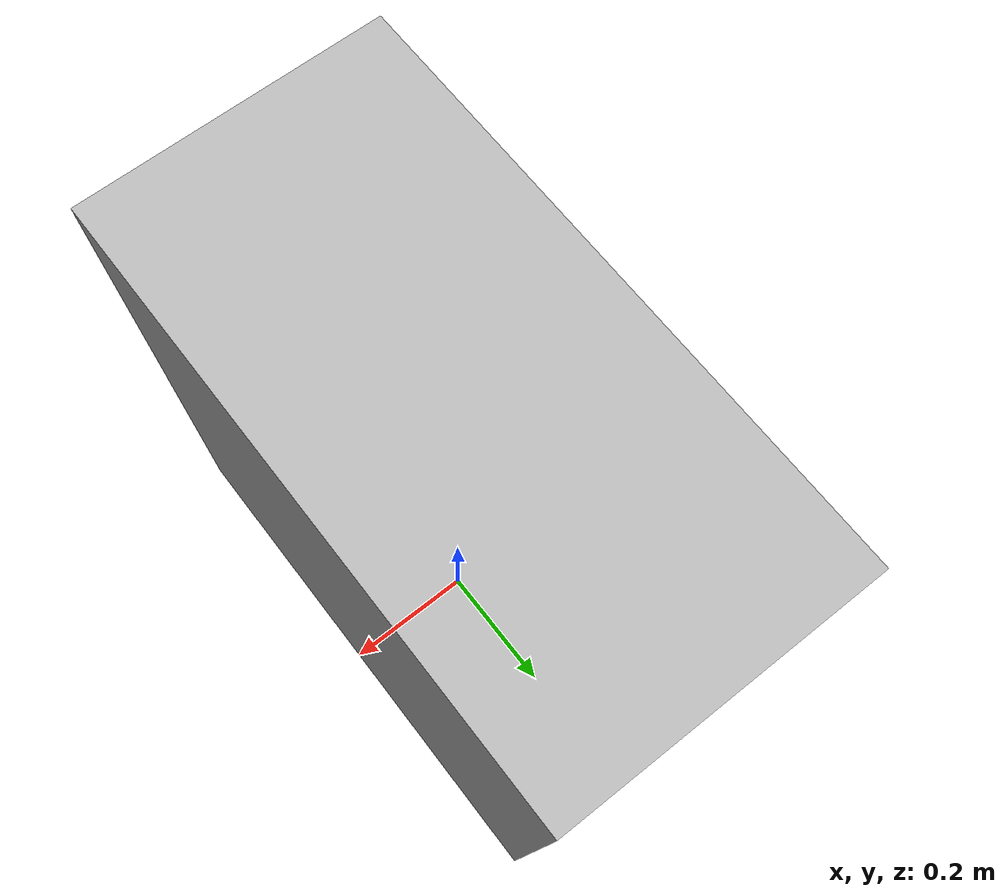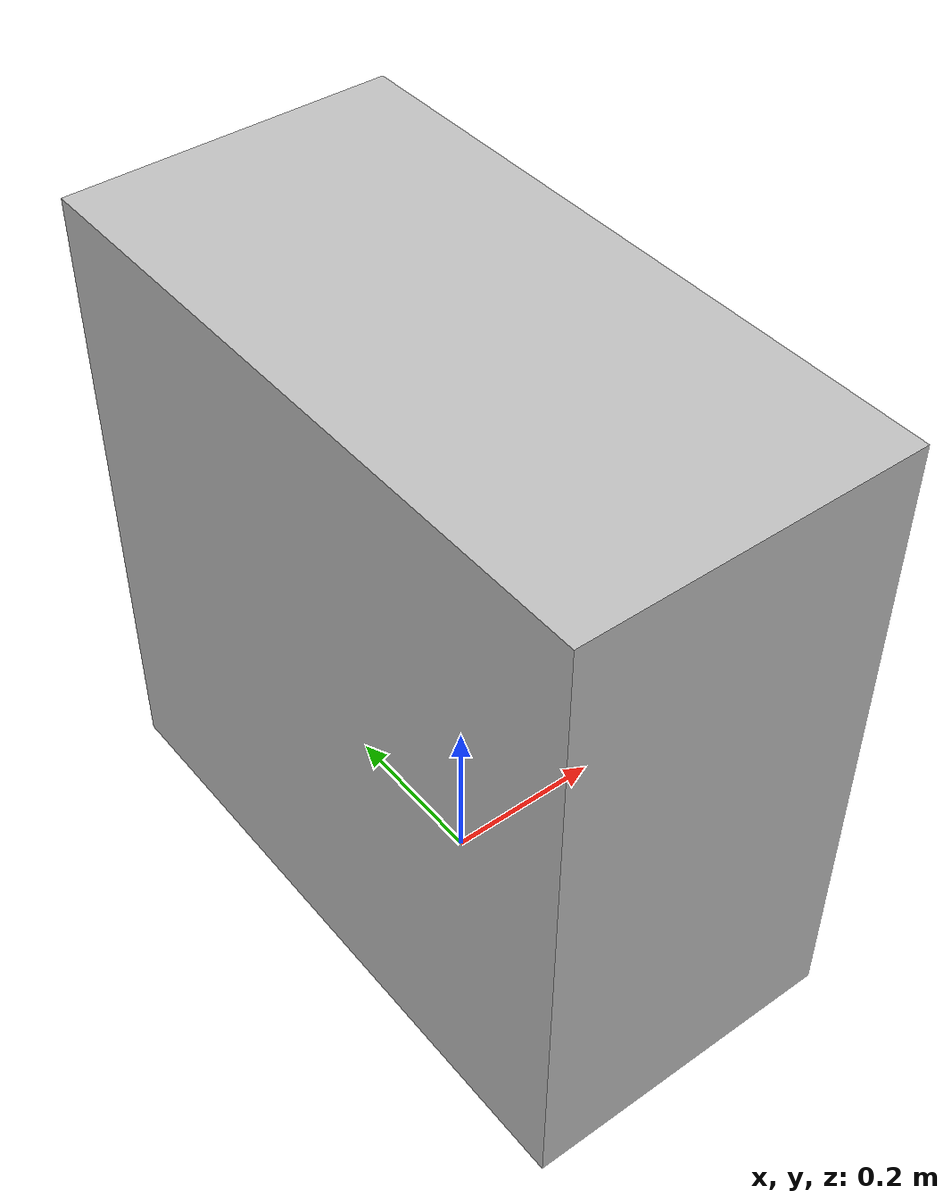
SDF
<?xml version="1.0"?>
<sdf version="1.6">
  <model name="rwc2016/cabinet_2doors">
    <link name="1_link">
      <collision name="1_col">
        <geometry>
          <box>
            <size>0.401 0.8 0.8</size>
          </box>
        </geometry>
      </collision>
      <visual name="1_vis">
        <geometry>
          <box>
            <size>0.401 0.8 0.8</size>
          </box>
        </geometry>
        <material>
          <ambient>0.75 0.75 0.75 1</ambient>
        </material>
      </visual>
      <pose>0 0 0.4 0 0 0</pose>
    </link>
    <link name="on_top_of">
      <virtual_volume name="on_top_of_vv">
        <geometry>
          <box>
            <size>0.341 0.74 0.25</size>
          </box>
        </geometry>
        <pose>0.0 0.0 0.945 0 0 0</pose>
      </virtual_volume>
    </link>
    <link name="in_front_of">
      <virtual_volume name="in_front_of_vv">
        <geometry>
          <box>
            <size>0.2 0.6 0.01</size>
          </box>
        </geometry>
        <pose>0.7005 0.0 0.005 0 0 0</pose>
      </virtual_volume>
    </link>
    <static>true</static>
  </model>
</sdf>
